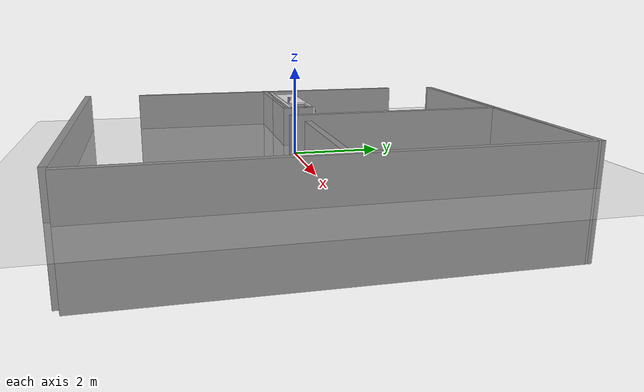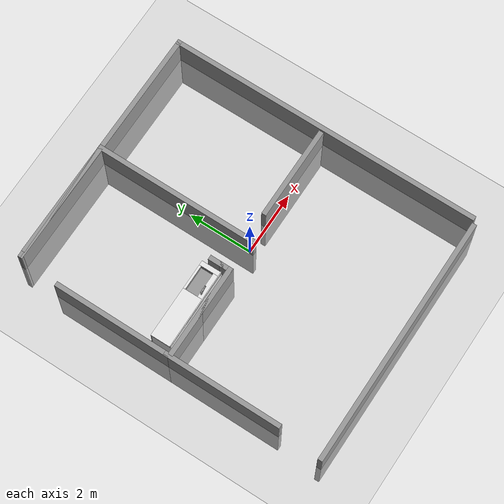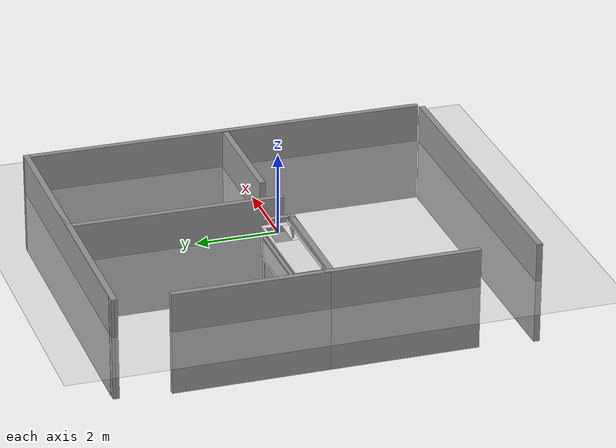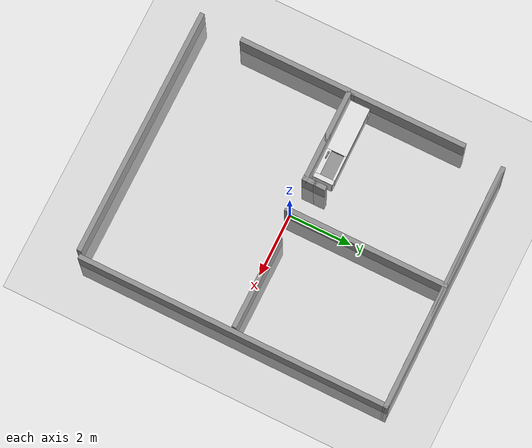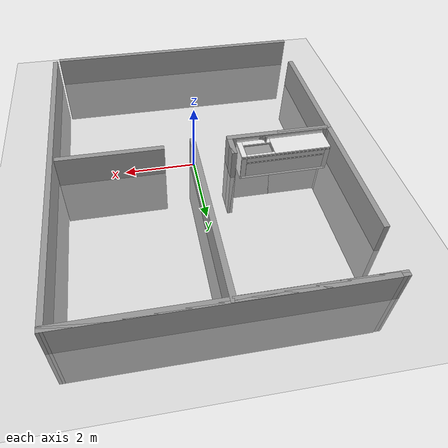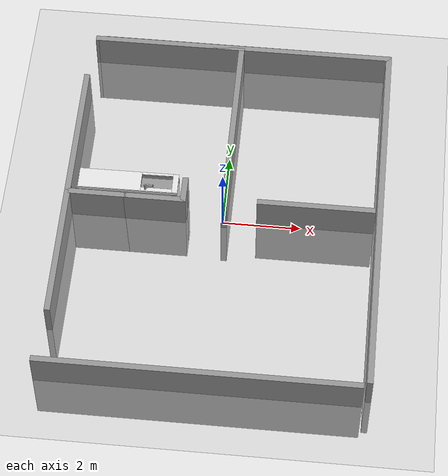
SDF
<sdf version="1.7">
 <world name="default">
  <model name="ground_plane">
   <static>1</static>
   <link name="link">
    <collision name="collision">
     <geometry><plane><normal>0 0 1</normal><size>100 100</size></plane></geometry>
     <surface><friction><ode><mu>100</mu><mu2>50</mu2></ode></friction></surface>
    </collision>
    <visual name="visual">
     <cast_shadows>0</cast_shadows>
     <geometry><plane><normal>0 0 1</normal><size>100 100</size></plane></geometry>
     <material>
      <script><uri>file://media/materials/scripts/gazebo.material</uri><name>Gazebo/Grey</name></script>
     </material>
    </visual>
   </link>
  </model>
  <model name="rc2025_0">
   <pose>-0.060527 0.05268 -1.57742 0 -0 0</pose>
   <link name="Wall_44">
    <collision name="Wall_44_Collision">
     <geometry><box><size>7.75 0.15 2.5</size></box></geometry>
     <pose>0 0 1.25 0 -0 0</pose>
    </collision>
    <visual name="Wall_44_Visual">
     <pose>0 0 1.25 0 -0 0</pose>
     <geometry><box><size>7.75 0.15 2.5</size></box></geometry>
     <material>
      <script><uri>file://media/materials/scripts/gazebo.material</uri><name>Gazebo/Grey</name></script>
      <ambient>1 1 1 1</ambient>
     </material>
     <meta><layer>0</layer></meta>
    </visual>
    <pose>0.23198 4.99895 0 0 -0 3.14159</pose>
   </link>
   <link name="Wall_47">
    <collision name="Wall_47_Collision">
     <geometry><box><size>4 0.15 2.5</size></box></geometry>
     <pose>0 0 1.25 0 -0 0</pose>
    </collision>
    <visual name="Wall_47_Visual">
     <pose>0 0 1.25 0 -0 0</pose>
     <geometry><box><size>4 0.15 2.5</size></box></geometry>
     <material>
      <script><uri>file://media/materials/scripts/gazebo.material</uri><name>Gazebo/Grey</name></script>
      <ambient>1 1 1 1</ambient>
     </material>
     <meta><layer>0</layer></meta>
    </visual>
    <pose>-1.83093 4.98956 0 0 -0 3.14159</pose>
   </link>
   <link name="Wall_48">
    <collision name="Wall_48_Collision">
     <geometry><box><size>7.93791 0.15 2.5</size></box></geometry>
     <pose>0 0 1.25 0 -0 0</pose>
    </collision>
    <visual name="Wall_48_Visual">
     <pose>0 0 1.25 0 -0 0</pose>
     <geometry><box><size>7.93791 0.15 2.5</size></box></geometry>
     <material>
      <script><uri>file://media/materials/scripts/gazebo.material</uri><name>Gazebo/Grey</name></script>
      <ambient>1 1 1 1</ambient>
     </material>
     <meta><layer>0</layer></meta>
    </visual>
    <pose>0.138025 4.99426 0 0 -0 0.001206</pose>
   </link>
   <link name="Wall_50">
    <collision name="Wall_50_Collision">
     <geometry><box><size>5.25 0.15 2.5</size></box></geometry>
     <pose>0 0 1.25 0 -0 0</pose>
    </collision>
    <visual name="Wall_50_Visual">
     <pose>0 0 1.25 0 -0 0</pose>
     <geometry><box><size>5.25 0.15 2.5</size></box></geometry>
     <material>
      <script><uri>file://media/materials/scripts/gazebo.material</uri><name>Gazebo/Grey</name></script>
      <ambient>1 1 1 1</ambient>
     </material>
     <meta><layer>0</layer></meta>
    </visual>
    <pose>0.094071 2.43956 0 0 -0 -1.5708</pose>
   </link>
   <link name="Wall_52">
    <collision name="Wall_52_Collision">
     <geometry><box><size>0.75 0.15 2.5</size></box></geometry>
     <pose>0 0 1.25 0 -0 0</pose>
    </collision>
    <visual name="Wall_52_Visual">
     <pose>0 0 1.25 0 -0 0</pose>
     <geometry><box><size>0.75 0.15 2.5</size></box></geometry>
     <material>
      <script><uri>file://media/materials/scripts/gazebo.material</uri><name>Gazebo/Grey</name></script>
      <ambient>1 1 1 1</ambient>
     </material>
     <meta><layer>0</layer></meta>
    </visual>
    <pose>-0.954949 0.246332 0 0 -0 -1.5708</pose>
   </link>
   <link name="Wall_53">
    <collision name="Wall_53_Collision">
     <geometry><box><size>3 0.15 2.5</size></box></geometry>
     <pose>0 0 1.25 0 -0 0</pose>
    </collision>
    <visual name="Wall_53_Visual">
     <pose>0 0 1.25 0 -0 0</pose>
     <geometry><box><size>3 0.15 2.5</size></box></geometry>
     <material>
      <script><uri>file://media/materials/scripts/gazebo.material</uri><name>Gazebo/Grey</name></script>
      <ambient>1 1 1 1</ambient>
     </material>
     <meta><layer>0</layer></meta>
    </visual>
    <pose>-2.37995 -0.053668 0 0 -0 3.14159</pose>
   </link>
   <link name="Wall_54">
    <collision name="Wall_54_Collision">
     <geometry><box><size>3 0.15 2.5</size></box></geometry>
     <pose>0 0 1.25 0 -0 0</pose>
    </collision>
    <visual name="Wall_54_Visual">
     <pose>0 0 1.25 0 -0 0</pose>
     <geometry><box><size>3 0.15 2.5</size></box></geometry>
     <material>
      <script><uri>file://media/materials/scripts/gazebo.material</uri><name>Gazebo/Grey</name></script>
      <ambient>1 1 1 1</ambient>
     </material>
     <meta><layer>0</layer></meta>
    </visual>
    <pose>-2.37995 -0.053668 0 0 -0 0</pose>
   </link>
   <link name="Wall_55">
    <collision name="Wall_55_Collision">
     <geometry><box><size>0.75 0.15 2.5</size></box></geometry>
     <pose>0 0 1.25 0 -0 0</pose>
    </collision>
    <visual name="Wall_55_Visual">
     <pose>0 0 1.25 0 -0 0</pose>
     <geometry><box><size>0.75 0.15 2.5</size></box></geometry>
     <material>
      <script><uri>file://media/materials/scripts/gazebo.material</uri><name>Gazebo/Grey</name></script>
      <ambient>1 1 1 1</ambient>
     </material>
     <meta><layer>0</layer></meta>
    </visual>
    <pose>-0.954949 0.246332 0 0 -0 1.5708</pose>
   </link>
   <link name="Wall_57">
    <collision name="Wall_57_Collision">
     <geometry><box><size>3.75 0.15 2.5</size></box></geometry>
     <pose>0 0 1.25 0 -0 0</pose>
    </collision>
    <visual name="Wall_57_Visual">
     <pose>0 0 1.25 0 -0 0</pose>
     <geometry><box><size>3.75 0.15 2.5</size></box></geometry>
     <material>
      <script><uri>file://media/materials/scripts/gazebo.material</uri><name>Gazebo/Grey</name></script>
      <ambient>1 1 1 1</ambient>
     </material>
     <meta><layer>0</layer></meta>
    </visual>
    <pose>-3.90495 1.84633 0 0 -0 -1.5708</pose>
   </link>
   <link name="Wall_59">
    <collision name="Wall_59_Collision">
     <geometry><box><size>3.75 0.15 2.5</size></box></geometry>
     <pose>0 0 1.25 0 -0 0</pose>
    </collision>
    <visual name="Wall_59_Visual">
     <pose>0 0 1.25 0 -0 0</pose>
     <geometry><box><size>3.75 0.15 2.5</size></box></geometry>
     <material>
      <script><uri>file://media/materials/scripts/gazebo.material</uri><name>Gazebo/Grey</name></script>
      <ambient>1 1 1 1</ambient>
     </material>
     <meta><layer>0</layer></meta>
    </visual>
    <pose>-3.90495 -1.75367 0 0 -0 -1.5708</pose>
   </link>
   <link name="Wall_61">
    <collision name="Wall_61_Collision">
     <geometry><box><size>8 0.15 2.5</size></box></geometry>
     <pose>0 0 1.25 0 -0 0</pose>
    </collision>
    <visual name="Wall_61_Visual">
     <pose>0 0 1.25 0 -0 0</pose>
     <geometry><box><size>8 0.15 2.5</size></box></geometry>
     <material>
      <script><uri>file://media/materials/scripts/gazebo.material</uri><name>Gazebo/Grey</name></script>
      <ambient>1 1 1 1</ambient>
     </material>
     <meta><layer>0</layer></meta>
    </visual>
    <pose>-0.10707 -4.99904 0 0 -0 0</pose>
   </link>
   <link name="Wall_63">
    <collision name="Wall_63_Collision">
     <geometry><box><size>10 0.15 2.5</size></box></geometry>
     <pose>0 0 1.25 0 -0 0</pose>
    </collision>
    <visual name="Wall_63_Visual">
     <pose>0 0 1.25 0 -0 0</pose>
     <geometry><box><size>10 0.15 2.5</size></box></geometry>
     <material>
      <script><uri>file://media/materials/scripts/gazebo.material</uri><name>Gazebo/Grey</name></script>
      <ambient>1 1 1 1</ambient>
     </material>
     <meta><layer>0</layer></meta>
    </visual>
    <pose>4.03198 0.073953 0 0 -0 -1.5708</pose>
   </link>
   <link name="Wall_65">
    <collision name="Wall_65_Collision">
     <geometry><box><size>3 0.15 2.5</size></box></geometry>
     <pose>0 0 1.25 0 -0 0</pose>
    </collision>
    <visual name="Wall_65_Visual">
     <pose>0 0 1.25 0 -0 0</pose>
     <geometry><box><size>3 0.15 2.5</size></box></geometry>
     <material>
      <script><uri>file://media/materials/scripts/gazebo.material</uri><name>Gazebo/Grey</name></script>
      <ambient>1 1 1 1</ambient>
     </material>
     <meta><layer>0</layer></meta>
    </visual>
    <pose>2.42037 0.054994 0 0 -0 0</pose>
   </link>
   <static>1</static>
  </model>
  <model name="sink">
   <link name="link">
    <inertial>
     <mass>10</mass>
     <inertia><ixx>1</ixx><ixy>0</ixy><ixz>0</ixz><iyy>1</iyy><iyz>0</iyz><izz>1</izz></inertia>
    </inertial>
    <visual name="faucet1">
     <pose>-0.52 0.82 0.94 0 -0 0</pose>
     <geometry><cylinder><radius>0.027</radius><length>0.18</length></cylinder></geometry>
     <material>
      <script><uri>model://base_materials/color/scripts</uri><name>hsr_color/grey</name></script>
     </material>
    </visual>
    <collision name="collision_faucet1">
     <pose>-0.52 0.82 0.94 0 -0 0</pose>
     <geometry><cylinder><radius>0.027</radius><length>0.18</length></cylinder></geometry>
    </collision>
    <visual name="faucet2">
     <pose>-0.52 0.72 0.97 1.047 -0 0</pose>
     <geometry><cylinder><radius>0.024</radius><length>0.24</length></cylinder></geometry>
     <material>
      <script><uri>model://base_materials/color/scripts</uri><name>hsr_color/grey</name></script>
     </material>
    </visual>
    <collision name="collision_faucet2">
     <pose>-0.52 0.72 0.97 1.047 -0 0</pose>
     <geometry><cylinder><radius>0.024</radius><length>0.24</length></cylinder></geometry>
    </collision>
    <visual name="faucet3">
     <pose>-0.52 0.63 1 0 -0 0</pose>
     <geometry><cylinder><radius>0.015</radius><length>0.04</length></cylinder></geometry>
     <material>
      <script><uri>model://base_materials/color/scripts</uri><name>hsr_color/grey</name></script>
     </material>
    </visual>
    <collision name="collision_faucet3">
     <pose>-0.52 0.63 1 0 -0 0</pose>
     <geometry><cylinder><radius>0.015</radius><length>0.04</length></cylinder></geometry>
    </collision>
    <visual name="faucet_handle">
     <pose>-0.52 0.75 1.03 1.309 -0 0</pose>
     <geometry><box><size>0.048 0.01 0.11</size></box></geometry>
     <material>
      <script><uri>model://base_materials/color/scripts</uri><name>hsr_color/grey</name></script>
     </material>
    </visual>
    <collision name="collision_faucet_handle">
     <pose>-0.52 0.75 1.03 1.309 -0 0</pose>
     <geometry><box><size>0.048 0.01 0.11</size></box></geometry>
    </collision>
    <visual name="back_bucket">
     <pose>-0.57 0.545 0.74 0 -0 0</pose>
     <geometry><box><size>0.02 0.8 0.18</size></box></geometry>
     <material>
      <script><uri>model://base_materials/color/scripts</uri><name>hsr_color/grey</name></script>
     </material>
    </visual>
    <collision name="collision_back_bucket">
     <pose>-0.57 0.545 0.74 0 -0 0</pose>
     <geometry><box><size>0.02 0.8 0.18</size></box></geometry>
    </collision>
    <visual name="front_bucket">
     <pose>-0.06 0.545 0.74 0 -0 0</pose>
     <geometry><box><size>0.02 0.8 0.18</size></box></geometry>
     <material>
      <script><uri>model://base_materials/color/scripts</uri><name>hsr_color/grey</name></script>
     </material>
    </visual>
    <collision name="collision_fromt_bucket">
     <pose>-0.06 0.545 0.74 0 -0 0</pose>
     <geometry><box><size>0.02 0.8 0.18</size></box></geometry>
    </collision>
    <visual name="left_bucket">
     <pose>-0.32 0.14 0.74 0 -0 0</pose>
     <geometry><box><size>0.5 0.02 0.18</size></box></geometry>
     <material>
      <script><uri>model://base_materials/color/scripts</uri><name>hsr_color/grey</name></script>
     </material>
    </visual>
    <collision name="collision_left_bucket">
     <pose>-0.32 0.14 0.74 0 -0 0</pose>
     <geometry><box><size>0.5 0.02 0.18</size></box></geometry>
    </collision>
    <visual name="right_bucket">
     <pose>-0.32 0.96 0.74 0 -0 0</pose>
     <geometry><box><size>0.5 0.02 0.18</size></box></geometry>
     <material>
      <script><uri>model://base_materials/color/scripts</uri><name>hsr_color/grey</name></script>
     </material>
    </visual>
    <collision name="collision_right_bucket">
     <pose>-0.32 0.96 0.74 0 -0 0</pose>
     <geometry><box><size>0.5 0.02 0.18</size></box></geometry>
    </collision>
    <visual name="bottom_bucket">
     <pose>-0.33 0.555 0.695 0 -0 0</pose>
     <geometry><box><size>0.52 0.82 0.02</size></box></geometry>
     <material>
      <script><uri>model://base_materials/color/scripts</uri><name>hsr_color/grey</name></script>
     </material>
    </visual>
    <collision name="collision_bottom_bucket">
     <pose>-0.33 0.555 0.695 0 -0 0</pose>
     <geometry><box><size>0.52 0.82 0.02</size></box></geometry>
    </collision>
    <visual name="front_board">
     <pose>-0.04 1.275 0.425 0 -0 0</pose>
     <geometry><box><size>0.02 2.549 0.85</size></box></geometry>
     <material>
      <script><uri>model://base_materials/color/scripts</uri><name>hsr_color/white</name></script>
     </material>
    </visual>
    <collision name="collision_front_board">
     <pose>-0.04 1.275 0.425 0 -0 0</pose>
     <geometry><box><size>0.02 2.549 0.85</size></box></geometry>
    </collision>
    <visual name="back_board1">
     <pose>-0.625 1.275 0.425 0 -0 0</pose>
     <geometry><box><size>0.05 2.549 0.85</size></box></geometry>
     <material>
      <script><uri>model://base_materials/color/scripts</uri><name>hsr_color/white</name></script>
     </material>
    </visual>
    <collision name="collision_back_board1">
     <pose>-0.625 1.275 0.425 0 -0 0</pose>
     <geometry><box><size>0.05 2.549 0.85</size></box></geometry>
    </collision>
    <visual name="left_board">
     <pose>-0.34 0.025 0.425 0 -0 0</pose>
     <geometry><box><size>0.62 0.05 0.85</size></box></geometry>
     <material>
      <script><uri>model://base_materials/color/scripts</uri><name>hsr_color/white</name></script>
     </material>
    </visual>
    <collision name="collision_left_board">
     <pose>-0.34 0.025 0.425 0 -0 0</pose>
     <geometry><box><size>0.62 0.05 0.85</size></box></geometry>
    </collision>
    <visual name="right_board">
     <pose>-0.34 2.525 0.425 0 -0 0</pose>
     <geometry><box><size>0.62 0.05 0.85</size></box></geometry>
     <material>
      <script><uri>model://base_materials/color/scripts</uri><name>hsr_color/white</name></script>
     </material>
    </visual>
    <collision name="collision_right_board">
     <pose>-0.34 2.525 0.425 0 -0 0</pose>
     <geometry><box><size>0.62 0.05 0.85</size></box></geometry>
    </collision>
    <visual name="top_left_board">
     <pose>-0.325 0.0725 0.835 0 -0 0</pose>
     <geometry><box><size>0.65 0.146 0.04</size></box></geometry>
     <material>
      <script><uri>model://base_materials/color/scripts</uri><name>hsr_color/white</name></script>
     </material>
    </visual>
    <collision name="collision_top_left_board">
     <pose>-0.325 0.0725 0.835 0 -0 0</pose>
     <geometry><box><size>0.65 0.146 0.04</size></box></geometry>
    </collision>
    <visual name="top_right_board">
     <pose>-0.325 1.7475 0.835 0 -0 0</pose>
     <geometry><box><size>0.65 1.606 0.04</size></box></geometry>
     <material>
      <script><uri>model://base_materials/color/scripts</uri><name>hsr_color/white</name></script>
     </material>
    </visual>
    <collision name="collision_top_right_board">
     <pose>-0.325 1.7475 0.835 0 -0 0</pose>
     <geometry><box><size>0.65 1.606 0.04</size></box></geometry>
    </collision>
    <visual name="top_front_board">
     <pose>-0.035 0.545 0.835 0 -0 0</pose>
     <geometry><box><size>0.07 0.8 0.04</size></box></geometry>
     <material>
      <script><uri>model://base_materials/color/scripts</uri><name>hsr_color/white</name></script>
     </material>
    </visual>
    <collision name="collision_top_front_board">
     <pose>-0.035 0.545 0.835 0 -0 0</pose>
     <geometry><box><size>0.07 0.8 0.04</size></box></geometry>
    </collision>
    <visual name="top_back_board">
     <pose>-0.56 0.545 0.835 0 -0 0</pose>
     <geometry><box><size>0.18 0.8 0.04</size></box></geometry>
     <material>
      <script><uri>model://base_materials/color/scripts</uri><name>hsr_color/white</name></script>
     </material>
    </visual>
    <collision name="collision_top_back_board">
     <pose>-0.56 0.545 0.835 0 -0 0</pose>
     <geometry><box><size>0.18 0.8 0.04</size></box></geometry>
    </collision>
    <visual name="back_board2">
     <pose>-0.64 1.275 0.895 0 -0 0</pose>
     <geometry><box><size>0.02 2.55 0.08</size></box></geometry>
     <material>
      <script><uri>model://base_materials/color/scripts</uri><name>hsr_color/white</name></script>
     </material>
    </visual>
    <collision name="collision_back_board2">
     <pose>-0.64 1.275 0.895 0 -0 0</pose>
     <geometry><box><size>0.02 2.55 0.08</size></box></geometry>
    </collision>
    <visual name="handle1_1">
     <pose>-0.015 1.275 0.81 0 -0 0</pose>
     <geometry><box><size>0.03 2.55 0.005</size></box></geometry>
     <material>
      <script><uri>model://base_materials/color/scripts</uri><name>hsr_color/grey</name></script>
     </material>
    </visual>
    <collision name="collision_handle1_1">
     <pose>-0.015 1.275 0.81 0 -0 0</pose>
     <geometry><box><size>0.03 2.55 0.005</size></box></geometry>
    </collision>
    <visual name="handle1_2">
     <pose>-0.029 1.275 0.7925 0 -0 0</pose>
     <geometry><box><size>0.005 2.55 0.04</size></box></geometry>
     <material>
      <script><uri>model://base_materials/color/scripts</uri><name>hsr_color/grey</name></script>
     </material>
    </visual>
    <collision name="collision_handle1_2">
     <pose>-0.029 1.275 0.7925 0 -0 0</pose>
     <geometry><box><size>0.005 2.55 0.04</size></box></geometry>
    </collision>
    <visual name="handle1_3">
     <pose>-0.015 1.275 0.77 0 -0 0</pose>
     <geometry><box><size>0.03 2.55 0.005</size></box></geometry>
     <material>
      <script><uri>model://base_materials/color/scripts</uri><name>hsr_color/grey</name></script>
     </material>
    </visual>
    <collision name="collision_handle1_3">
     <pose>-0.015 1.275 0.77 0 -0 0</pose>
     <geometry><box><size>0.03 2.55 0.005</size></box></geometry>
    </collision>
    <visual name="front_left_drawer">
     <pose>-0.015 0.0725 0.44 0 -0 0</pose>
     <geometry><box><size>0.03 0.145 0.66</size></box></geometry>
     <material>
      <script><uri>model://sink/scripts</uri><uri>model://sink/textures</uri><name>sink/001</name></script>
     </material>
    </visual>
    <collision name="collision_left_drawer">
     <pose>-0.015 0.0725 0.44 0 -0 0</pose>
     <geometry><box><size>0.03 0.145 0.66</size></box></geometry>
    </collision>
    <visual name="front_right_drawer">
     <pose>-0.015 2.4725 0.44 0 -0 0</pose>
     <geometry><box><size>0.03 0.145 0.66</size></box></geometry>
     <material>
      <script><uri>model://sink/scripts</uri><uri>model://sink/textures</uri><name>sink/001</name></script>
     </material>
    </visual>
    <collision name="collision_right_drawer">
     <pose>-0.015 2.4725 0.44 0 -0 0</pose>
     <geometry><box><size>0.03 0.145 0.66</size></box></geometry>
    </collision>
    <visual name="front_top_drawer">
     <pose>-0.015 1.275 0.6975 0 -0 0</pose>
     <geometry><box><size>0.03 2.25 0.145</size></box></geometry>
     <material>
      <script><uri>model://sink/scripts</uri><uri>model://sink/textures</uri><name>sink/001</name></script>
     </material>
    </visual>
    <collision name="collision_top_drawer">
     <pose>-0.015 1.275 0.6975 0 -0 0</pose>
     <geometry><box><size>0.03 2.25 0.145</size></box></geometry>
    </collision>
    <visual name="handle2_1">
     <pose>-0.015 1.275 0.62 0 -0 0</pose>
     <geometry><box><size>0.03 2.25 0.005</size></box></geometry>
     <material>
      <script><uri>model://base_materials/color/scripts</uri><name>hsr_color/grey</name></script>
     </material>
    </visual>
    <collision name="collision_handle2_1">
     <pose>-0.015 1.275 0.62 0 -0 0</pose>
     <geometry><box><size>0.03 2.25 0.005</size></box></geometry>
    </collision>
    <visual name="handle2_2">
     <pose>-0.029 1.275 0.6025 0 -0 0</pose>
     <geometry><box><size>0.005 2.25 0.04</size></box></geometry>
     <material>
      <script><uri>model://base_materials/color/scripts</uri><name>hsr_color/grey</name></script>
     </material>
    </visual>
    <collision name="collision_handle2_2">
     <pose>-0.029 1.275 0.6025 0 -0 0</pose>
     <geometry><box><size>0.005 2.25 0.04</size></box></geometry>
    </collision>
    <visual name="handle2_3">
     <pose>-0.015 1.275 0.58 0 -0 0</pose>
     <geometry><box><size>0.03 2.25 0.005</size></box></geometry>
     <material>
      <script><uri>model://base_materials/color/scripts</uri><name>hsr_color/grey</name></script>
     </material>
    </visual>
    <collision name="collision_handle2_3">
     <pose>-0.015 1.275 0.58 0 -0 0</pose>
     <geometry><box><size>0.03 2.25 0.005</size></box></geometry>
    </collision>
    <visual name="front_bottom_drawer">
     <pose>-0.015 1.275 0.345 0 -0 0</pose>
     <geometry><box><size>0.03 2.25 0.47</size></box></geometry>
     <material>
      <script><uri>model://sink/scripts</uri><uri>model://sink/textures</uri><name>sink/001</name></script>
     </material>
    </visual>
    <collision name="collision_bottom_drawer">
     <pose>-0.015 1.275 0.345 0 -0 0</pose>
     <geometry><box><size>0.03 2.25 0.47</size></box></geometry>
    </collision>
    <velocity_decay><linear>0</linear><angular>0</angular></velocity_decay>
   </link>
   <static>1</static>
   <pose>-1.19418 0.798357 0 0 -0 1.57856</pose>
  </model>
 </world>
</sdf>
